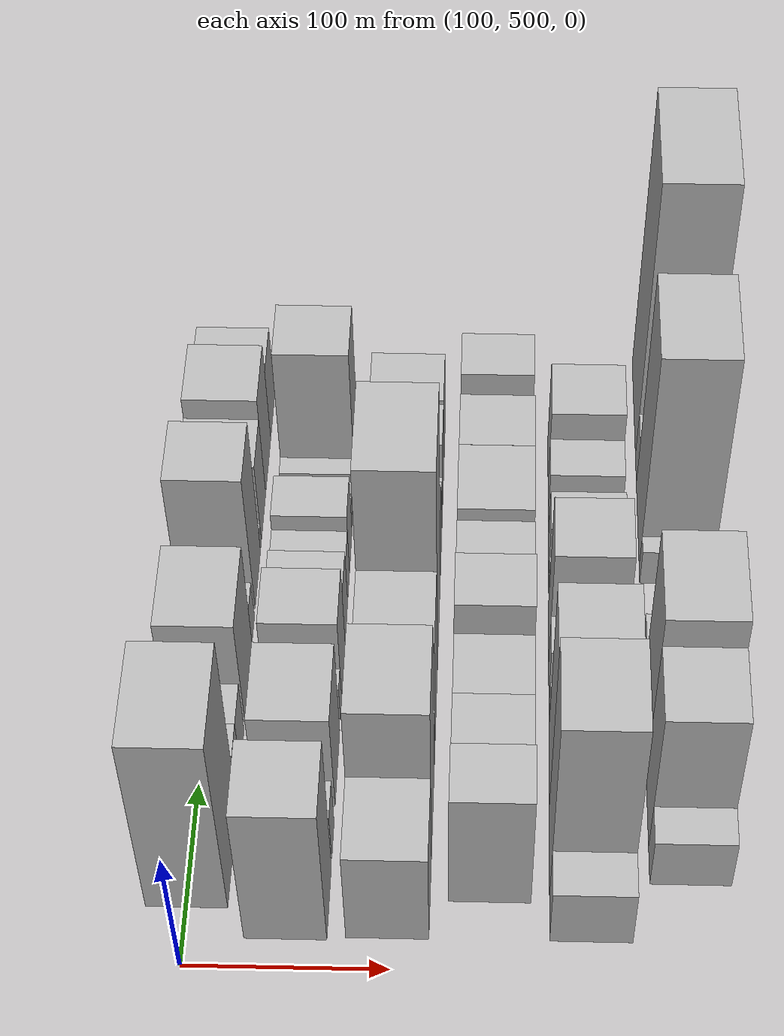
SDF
<sdf version="1.6">
 <world name="default">
  <model name="building_46">
   <static>1</static>
   <pose>100.0000 559.2429 0 0.000000 0.000000 0.000000</pose>
   <link name="link">
    <pose>0 0 72.00 0 0 0</pose>
    <collision name="collision"><geometry><box><size>40.0000 56.6516 144.0000</size></box></geometry></collision>
    <visual name="visual">
     <cast_shadows>0</cast_shadows>
     <geometry><box><size>40.0000 56.6516 144.0000</size></box></geometry>
     <material>
      <script>
       <uri>model://HANNAS_wall/materials/scripts</uri>
       <uri>model://HANNAS_wall/materials/textures</uri>
       <name>vrc/HANNAS_wall</name>
      </script>
     </material>
    </visual>
   </link>
  </model>
  <model name="building_47">
   <static>1</static>
   <pose>100.0000 598.6686 0 0.000000 0.000000 0.000000</pose>
   <link name="link">
    <pose>0 0 21.00 0 0 0</pose>
    <collision name="collision"><geometry><box><size>40.0000 22.1999 42.0000</size></box></geometry></collision>
    <visual name="visual">
     <cast_shadows>0</cast_shadows>
     <geometry><box><size>40.0000 22.1999 42.0000</size></box></geometry>
     <material>
      <script>
       <uri>model://HANNAS_wall/materials/scripts</uri>
       <uri>model://HANNAS_wall/materials/textures</uri>
       <name>vrc/HANNAS_wall</name>
      </script>
     </material>
    </visual>
   </link>
  </model>
  <model name="building_48">
   <static>1</static>
   <pose>100.0000 621.4675 0 0.000000 0.000000 0.000000</pose>
   <link name="link">
    <pose>0 0 21.00 0 0 0</pose>
    <collision name="collision"><geometry><box><size>40.0000 23.3979 42.0000</size></box></geometry></collision>
    <visual name="visual">
     <cast_shadows>0</cast_shadows>
     <geometry><box><size>40.0000 23.3979 42.0000</size></box></geometry>
     <material>
      <script>
       <uri>model://HANNAS_wall/materials/scripts</uri>
       <uri>model://HANNAS_wall/materials/textures</uri>
       <name>vrc/HANNAS_wall</name>
      </script>
     </material>
    </visual>
   </link>
  </model>
  <model name="building_49">
   <static>1</static>
   <pose>100.0000 662.6678 0 0.000000 0.000000 0.000000</pose>
   <link name="link">
    <pose>0 0 42.00 0 0 0</pose>
    <collision name="collision"><geometry><box><size>40.0000 49.0027 84.0000</size></box></geometry></collision>
    <visual name="visual">
     <cast_shadows>0</cast_shadows>
     <geometry><box><size>40.0000 49.0027 84.0000</size></box></geometry>
     <material>
      <script>
       <uri>model://HANNAS_wall/materials/scripts</uri>
       <uri>model://HANNAS_wall/materials/textures</uri>
       <name>vrc/HANNAS_wall</name>
      </script>
     </material>
    </visual>
   </link>
  </model>
  <model name="building_50">
   <static>1</static>
   <pose>100.0000 695.8638 0 0.000000 0.000000 0.000000</pose>
   <link name="link">
    <pose>0 0 15.00 0 0 0</pose>
    <collision name="collision"><geometry><box><size>40.0000 17.3894 30.0000</size></box></geometry></collision>
    <visual name="visual">
     <cast_shadows>0</cast_shadows>
     <geometry><box><size>40.0000 17.3894 30.0000</size></box></geometry>
     <material>
      <script>
       <uri>model://HANNAS_wall/materials/scripts</uri>
       <uri>model://HANNAS_wall/materials/textures</uri>
       <name>vrc/HANNAS_wall</name>
      </script>
     </material>
    </visual>
   </link>
  </model>
  <model name="building_51">
   <static>1</static>
   <pose>100.0000 728.7496 0 0.000000 0.000000 0.000000</pose>
   <link name="link">
    <pose>0 0 54.00 0 0 0</pose>
    <collision name="collision"><geometry><box><size>40.0000 38.3821 108.0000</size></box></geometry></collision>
    <visual name="visual">
     <cast_shadows>0</cast_shadows>
     <geometry><box><size>40.0000 38.3821 108.0000</size></box></geometry>
     <material>
      <script>
       <uri>model://HANNAS_wall/materials/scripts</uri>
       <uri>model://HANNAS_wall/materials/textures</uri>
       <name>vrc/HANNAS_wall</name>
      </script>
     </material>
    </visual>
   </link>
  </model>
  <model name="building_52">
   <static>1</static>
   <pose>100.0000 751.4779 0 0.000000 0.000000 0.000000</pose>
   <link name="link">
    <pose>0 0 7.50 0 0 0</pose>
    <collision name="collision"><geometry><box><size>40.0000 7.0746 15.0000</size></box></geometry></collision>
    <visual name="visual">
     <cast_shadows>0</cast_shadows>
     <geometry><box><size>40.0000 7.0746 15.0000</size></box></geometry>
     <material>
      <script>
       <uri>model://HANNAS_wall/materials/scripts</uri>
       <uri>model://HANNAS_wall/materials/textures</uri>
       <name>vrc/HANNAS_wall</name>
      </script>
     </material>
    </visual>
   </link>
  </model>
  <model name="building_53">
   <static>1</static>
   <pose>100.0000 771.5114 0 0.000000 0.000000 0.000000</pose>
   <link name="link">
    <pose>0 0 31.50 0 0 0</pose>
    <collision name="collision"><geometry><box><size>40.0000 32.9924 63.0000</size></box></geometry></collision>
    <visual name="visual">
     <cast_shadows>0</cast_shadows>
     <geometry><box><size>40.0000 32.9924 63.0000</size></box></geometry>
     <material>
      <script>
       <uri>model://HANNAS_wall/materials/scripts</uri>
       <uri>model://HANNAS_wall/materials/textures</uri>
       <name>vrc/HANNAS_wall</name>
      </script>
     </material>
    </visual>
   </link>
  </model>
  <model name="building_54">
   <static>1</static>
   <pose>100.0000 807.7288 0 0.000000 0.000000 0.000000</pose>
   <link name="link">
    <pose>0 0 39.00 0 0 0</pose>
    <collision name="collision"><geometry><box><size>40.0000 39.4424 78.0000</size></box></geometry></collision>
    <visual name="visual">
     <cast_shadows>0</cast_shadows>
     <geometry><box><size>40.0000 39.4424 78.0000</size></box></geometry>
     <material>
      <script>
       <uri>model://HANNAS_wall/materials/scripts</uri>
       <uri>model://HANNAS_wall/materials/textures</uri>
       <name>vrc/HANNAS_wall</name>
      </script>
     </material>
    </visual>
   </link>
  </model>
  <model name="building_55">
   <static>1</static>
   <pose>100.0000 843.3820 0 0.000000 0.000000 0.000000</pose>
   <link name="link">
    <pose>0 0 28.50 0 0 0</pose>
    <collision name="collision"><geometry><box><size>40.0000 31.8641 57.0000</size></box></geometry></collision>
    <visual name="visual">
     <cast_shadows>0</cast_shadows>
     <geometry><box><size>40.0000 31.8641 57.0000</size></box></geometry>
     <material>
      <script>
       <uri>model://HANNAS_wall/materials/scripts</uri>
       <uri>model://HANNAS_wall/materials/textures</uri>
       <name>vrc/HANNAS_wall</name>
      </script>
     </material>
    </visual>
   </link>
  </model>
  <model name="building_101">
   <static>1</static>
   <pose>149.0000 534.9951 0 0.000000 0.000000 0.000000</pose>
   <link name="link">
    <pose>0 0 57.00 0 0 0</pose>
    <collision name="collision"><geometry><box><size>40.0000 40.2542 114.0000</size></box></geometry></collision>
    <visual name="visual">
     <cast_shadows>0</cast_shadows>
     <geometry><box><size>40.0000 40.2542 114.0000</size></box></geometry>
     <material>
      <script>
       <uri>model://HANNAS_wall/materials/scripts</uri>
       <uri>model://HANNAS_wall/materials/textures</uri>
       <name>vrc/HANNAS_wall</name>
      </script>
     </material>
    </visual>
   </link>
  </model>
  <model name="building_102">
   <static>1</static>
   <pose>149.0000 569.5381 0 0.000000 0.000000 0.000000</pose>
   <link name="link">
    <pose>0 0 19.50 0 0 0</pose>
    <collision name="collision"><geometry><box><size>40.0000 20.8317 39.0000</size></box></geometry></collision>
    <visual name="visual">
     <cast_shadows>0</cast_shadows>
     <geometry><box><size>40.0000 20.8317 39.0000</size></box></geometry>
     <material>
      <script>
       <uri>model://HANNAS_wall/materials/scripts</uri>
       <uri>model://HANNAS_wall/materials/textures</uri>
       <name>vrc/HANNAS_wall</name>
      </script>
     </material>
    </visual>
   </link>
  </model>
  <model name="building_103">
   <static>1</static>
   <pose>149.0000 611.3906 0 0.000000 0.000000 0.000000</pose>
   <link name="link">
    <pose>0 0 39.00 0 0 0</pose>
    <collision name="collision"><geometry><box><size>40.0000 44.8732 78.0000</size></box></geometry></collision>
    <visual name="visual">
     <cast_shadows>0</cast_shadows>
     <geometry><box><size>40.0000 44.8732 78.0000</size></box></geometry>
     <material>
      <script>
       <uri>model://HANNAS_wall/materials/scripts</uri>
       <uri>model://HANNAS_wall/materials/textures</uri>
       <name>vrc/HANNAS_wall</name>
      </script>
     </material>
    </visual>
   </link>
  </model>
  <model name="building_104">
   <static>1</static>
   <pose>149.0000 647.1816 0 0.000000 0.000000 0.000000</pose>
   <link name="link">
    <pose>0 0 13.50 0 0 0</pose>
    <collision name="collision"><geometry><box><size>40.0000 12.7090 27.0000</size></box></geometry></collision>
    <visual name="visual">
     <cast_shadows>0</cast_shadows>
     <geometry><box><size>40.0000 12.7090 27.0000</size></box></geometry>
     <material>
      <script>
       <uri>model://HANNAS_wall/materials/scripts</uri>
       <uri>model://HANNAS_wall/materials/textures</uri>
       <name>vrc/HANNAS_wall</name>
      </script>
     </material>
    </visual>
   </link>
  </model>
  <model name="building_105">
   <static>1</static>
   <pose>149.0000 670.7707 0 0.000000 0.000000 0.000000</pose>
   <link name="link">
    <pose>0 0 33.00 0 0 0</pose>
    <collision name="collision"><geometry><box><size>40.0000 34.4691 66.0000</size></box></geometry></collision>
    <visual name="visual">
     <cast_shadows>0</cast_shadows>
     <geometry><box><size>40.0000 34.4691 66.0000</size></box></geometry>
     <material>
      <script>
       <uri>model://HANNAS_wall/materials/scripts</uri>
       <uri>model://HANNAS_wall/materials/textures</uri>
       <name>vrc/HANNAS_wall</name>
      </script>
     </material>
    </visual>
   </link>
  </model>
  <model name="building_106">
   <static>1</static>
   <pose>149.0000 701.3755 0 0.000000 0.000000 0.000000</pose>
   <link name="link">
    <pose>0 0 22.50 0 0 0</pose>
    <collision name="collision"><geometry><box><size>40.0000 26.7407 45.0000</size></box></geometry></collision>
    <visual name="visual">
     <cast_shadows>0</cast_shadows>
     <geometry><box><size>40.0000 26.7407 45.0000</size></box></geometry>
     <material>
      <script>
       <uri>model://HANNAS_wall/materials/scripts</uri>
       <uri>model://HANNAS_wall/materials/textures</uri>
       <name>vrc/HANNAS_wall</name>
      </script>
     </material>
    </visual>
   </link>
  </model>
  <model name="building_107">
   <static>1</static>
   <pose>149.0000 724.8934 0 0.000000 0.000000 0.000000</pose>
   <link name="link">
    <pose>0 0 18.00 0 0 0</pose>
    <collision name="collision"><geometry><box><size>40.0000 20.2952 36.0000</size></box></geometry></collision>
    <visual name="visual">
     <cast_shadows>0</cast_shadows>
     <geometry><box><size>40.0000 20.2952 36.0000</size></box></geometry>
     <material>
      <script>
       <uri>model://HANNAS_wall/materials/scripts</uri>
       <uri>model://HANNAS_wall/materials/textures</uri>
       <name>vrc/HANNAS_wall</name>
      </script>
     </material>
    </visual>
   </link>
  </model>
  <model name="building_108">
   <static>1</static>
   <pose>149.0000 748.5967 0 0.000000 0.000000 0.000000</pose>
   <link name="link">
    <pose>0 0 24.00 0 0 0</pose>
    <collision name="collision"><geometry><box><size>40.0000 27.1114 48.0000</size></box></geometry></collision>
    <visual name="visual">
     <cast_shadows>0</cast_shadows>
     <geometry><box><size>40.0000 27.1114 48.0000</size></box></geometry>
     <material>
      <script>
       <uri>model://HANNAS_wall/materials/scripts</uri>
       <uri>model://HANNAS_wall/materials/textures</uri>
       <name>vrc/HANNAS_wall</name>
      </script>
     </material>
    </visual>
   </link>
  </model>
  <model name="building_109">
   <static>1</static>
   <pose>149.0000 766.4073 0 0.000000 0.000000 0.000000</pose>
   <link name="link">
    <pose>0 0 10.50 0 0 0</pose>
    <collision name="collision"><geometry><box><size>40.0000 8.5098 21.0000</size></box></geometry></collision>
    <visual name="visual">
     <cast_shadows>0</cast_shadows>
     <geometry><box><size>40.0000 8.5098 21.0000</size></box></geometry>
     <material>
      <script>
       <uri>model://HANNAS_wall/materials/scripts</uri>
       <uri>model://HANNAS_wall/materials/textures</uri>
       <name>vrc/HANNAS_wall</name>
      </script>
     </material>
    </visual>
   </link>
  </model>
  <model name="building_110">
   <static>1</static>
   <pose>149.0000 778.8269 0 0.000000 0.000000 0.000000</pose>
   <link name="link">
    <pose>0 0 9.00 0 0 0</pose>
    <collision name="collision"><geometry><box><size>40.0000 8.3294 18.0000</size></box></geometry></collision>
    <visual name="visual">
     <cast_shadows>0</cast_shadows>
     <geometry><box><size>40.0000 8.3294 18.0000</size></box></geometry>
     <material>
      <script>
       <uri>model://HANNAS_wall/materials/scripts</uri>
       <uri>model://HANNAS_wall/materials/textures</uri>
       <name>vrc/HANNAS_wall</name>
      </script>
     </material>
    </visual>
   </link>
  </model>
  <model name="building_111">
   <static>1</static>
   <pose>149.0000 788.6554 0 0.000000 0.000000 0.000000</pose>
   <link name="link">
    <pose>0 0 12.00 0 0 0</pose>
    <collision name="collision"><geometry><box><size>40.0000 11.3275 24.0000</size></box></geometry></collision>
    <visual name="visual">
     <cast_shadows>0</cast_shadows>
     <geometry><box><size>40.0000 11.3275 24.0000</size></box></geometry>
     <material>
      <script>
       <uri>model://HANNAS_wall/materials/scripts</uri>
       <uri>model://HANNAS_wall/materials/textures</uri>
       <name>vrc/HANNAS_wall</name>
      </script>
     </material>
    </visual>
   </link>
  </model>
  <model name="building_112">
   <static>1</static>
   <pose>149.0000 811.8567 0 0.000000 0.000000 0.000000</pose>
   <link name="link">
    <pose>0 0 54.00 0 0 0</pose>
    <collision name="collision"><geometry><box><size>40.0000 35.0752 108.0000</size></box></geometry></collision>
    <visual name="visual">
     <cast_shadows>0</cast_shadows>
     <geometry><box><size>40.0000 35.0752 108.0000</size></box></geometry>
     <material>
      <script>
       <uri>model://HANNAS_wall/materials/scripts</uri>
       <uri>model://HANNAS_wall/materials/textures</uri>
       <name>vrc/HANNAS_wall</name>
      </script>
     </material>
    </visual>
   </link>
  </model>
  <model name="building_113">
   <static>1</static>
   <pose>149.0000 833.7537 0 0.000000 0.000000 0.000000</pose>
   <link name="link">
    <pose>0 0 10.50 0 0 0</pose>
    <collision name="collision"><geometry><box><size>40.0000 8.7186 21.0000</size></box></geometry></collision>
    <visual name="visual">
     <cast_shadows>0</cast_shadows>
     <geometry><box><size>40.0000 8.7186 21.0000</size></box></geometry>
     <material>
      <script>
       <uri>model://HANNAS_wall/materials/scripts</uri>
       <uri>model://HANNAS_wall/materials/textures</uri>
       <name>vrc/HANNAS_wall</name>
      </script>
     </material>
    </visual>
   </link>
  </model>
  <model name="building_152">
   <static>1</static>
   <pose>198.0000 538.4800 0 0.000000 0.000000 0.000000</pose>
   <link name="link">
    <pose>0 0 37.50 0 0 0</pose>
    <collision name="collision"><geometry><box><size>40.0000 44.2013 75.0000</size></box></geometry></collision>
    <visual name="visual">
     <cast_shadows>0</cast_shadows>
     <geometry><box><size>40.0000 44.2013 75.0000</size></box></geometry>
     <material>
      <script>
       <uri>model://HANNAS_wall/materials/scripts</uri>
       <uri>model://HANNAS_wall/materials/textures</uri>
       <name>vrc/HANNAS_wall</name>
      </script>
     </material>
    </visual>
   </link>
  </model>
  <model name="building_153">
   <static>1</static>
   <pose>198.0000 585.3337 0 0.000000 0.000000 0.000000</pose>
   <link name="link">
    <pose>0 0 64.50 0 0 0</pose>
    <collision name="collision"><geometry><box><size>40.0000 49.5060 129.0000</size></box></geometry></collision>
    <visual name="visual">
     <cast_shadows>0</cast_shadows>
     <geometry><box><size>40.0000 49.5060 129.0000</size></box></geometry>
     <material>
      <script>
       <uri>model://HANNAS_wall/materials/scripts</uri>
       <uri>model://HANNAS_wall/materials/textures</uri>
       <name>vrc/HANNAS_wall</name>
      </script>
     </material>
    </visual>
   </link>
  </model>
  <model name="building_154">
   <static>1</static>
   <pose>198.0000 619.0018 0 0.000000 0.000000 0.000000</pose>
   <link name="link">
    <pose>0 0 15.00 0 0 0</pose>
    <collision name="collision"><geometry><box><size>40.0000 17.8302 30.0000</size></box></geometry></collision>
    <visual name="visual">
     <cast_shadows>0</cast_shadows>
     <geometry><box><size>40.0000 17.8302 30.0000</size></box></geometry>
     <material>
      <script>
       <uri>model://HANNAS_wall/materials/scripts</uri>
       <uri>model://HANNAS_wall/materials/textures</uri>
       <name>vrc/HANNAS_wall</name>
      </script>
     </material>
    </visual>
   </link>
  </model>
  <model name="building_155">
   <static>1</static>
   <pose>198.0000 649.9131 0 0.000000 0.000000 0.000000</pose>
   <link name="link">
    <pose>0 0 43.50 0 0 0</pose>
    <collision name="collision"><geometry><box><size>40.0000 43.9924 87.0000</size></box></geometry></collision>
    <visual name="visual">
     <cast_shadows>0</cast_shadows>
     <geometry><box><size>40.0000 43.9924 87.0000</size></box></geometry>
     <material>
      <script>
       <uri>model://HANNAS_wall/materials/scripts</uri>
       <uri>model://HANNAS_wall/materials/textures</uri>
       <name>vrc/HANNAS_wall</name>
      </script>
     </material>
    </visual>
   </link>
  </model>
  <model name="building_156">
   <static>1</static>
   <pose>198.0000 699.5002 0 0.000000 0.000000 0.000000</pose>
   <link name="link">
    <pose>0 0 82.50 0 0 0</pose>
    <collision name="collision"><geometry><box><size>40.0000 55.1818 165.0000</size></box></geometry></collision>
    <visual name="visual">
     <cast_shadows>0</cast_shadows>
     <geometry><box><size>40.0000 55.1818 165.0000</size></box></geometry>
     <material>
      <script>
       <uri>model://HANNAS_wall/materials/scripts</uri>
       <uri>model://HANNAS_wall/materials/textures</uri>
       <name>vrc/HANNAS_wall</name>
      </script>
     </material>
    </visual>
   </link>
  </model>
  <model name="building_157">
   <static>1</static>
   <pose>198.0000 742.1951 0 0.000000 0.000000 0.000000</pose>
   <link name="link">
    <pose>0 0 25.50 0 0 0</pose>
    <collision name="collision"><geometry><box><size>40.0000 30.2081 51.0000</size></box></geometry></collision>
    <visual name="visual">
     <cast_shadows>0</cast_shadows>
     <geometry><box><size>40.0000 30.2081 51.0000</size></box></geometry>
     <material>
      <script>
       <uri>model://HANNAS_wall/materials/scripts</uri>
       <uri>model://HANNAS_wall/materials/textures</uri>
       <name>vrc/HANNAS_wall</name>
      </script>
     </material>
    </visual>
   </link>
  </model>
  <model name="building_158">
   <static>1</static>
   <pose>198.0000 768.9513 0 0.000000 0.000000 0.000000</pose>
   <link name="link">
    <pose>0 0 15.00 0 0 0</pose>
    <collision name="collision"><geometry><box><size>40.0000 17.3043 30.0000</size></box></geometry></collision>
    <visual name="visual">
     <cast_shadows>0</cast_shadows>
     <geometry><box><size>40.0000 17.3043 30.0000</size></box></geometry>
     <material>
      <script>
       <uri>model://HANNAS_wall/materials/scripts</uri>
       <uri>model://HANNAS_wall/materials/textures</uri>
       <name>vrc/HANNAS_wall</name>
      </script>
     </material>
    </visual>
   </link>
  </model>
  <model name="building_159">
   <static>1</static>
   <pose>198.0000 791.8605 0 0.000000 0.000000 0.000000</pose>
   <link name="link">
    <pose>0 0 28.50 0 0 0</pose>
    <collision name="collision"><geometry><box><size>40.0000 28.5141 57.0000</size></box></geometry></collision>
    <visual name="visual">
     <cast_shadows>0</cast_shadows>
     <geometry><box><size>40.0000 28.5141 57.0000</size></box></geometry>
     <material>
      <script>
       <uri>model://HANNAS_wall/materials/scripts</uri>
       <uri>model://HANNAS_wall/materials/textures</uri>
       <name>vrc/HANNAS_wall</name>
      </script>
     </material>
    </visual>
   </link>
  </model>
  <model name="building_160">
   <static>1</static>
   <pose>198.0000 822.9380 0 0.000000 0.000000 0.000000</pose>
   <link name="link">
    <pose>0 0 30.00 0 0 0</pose>
    <collision name="collision"><geometry><box><size>40.0000 33.6409 60.0000</size></box></geometry></collision>
    <visual name="visual">
     <cast_shadows>0</cast_shadows>
     <geometry><box><size>40.0000 33.6409 60.0000</size></box></geometry>
     <material>
      <script>
       <uri>model://HANNAS_wall/materials/scripts</uri>
       <uri>model://HANNAS_wall/materials/textures</uri>
       <name>vrc/HANNAS_wall</name>
      </script>
     </material>
    </visual>
   </link>
  </model>
  <model name="building_195">
   <static>1</static>
   <pose>247.0000 553.0447 0 0.000000 0.000000 0.000000</pose>
   <link name="link">
    <pose>0 0 46.50 0 0 0</pose>
    <collision name="collision"><geometry><box><size>40.0000 31.8889 93.0000</size></box></geometry></collision>
    <visual name="visual">
     <cast_shadows>0</cast_shadows>
     <geometry><box><size>40.0000 31.8889 93.0000</size></box></geometry>
     <material>
      <script>
       <uri>model://HANNAS_wall/materials/scripts</uri>
       <uri>model://HANNAS_wall/materials/textures</uri>
       <name>vrc/HANNAS_wall</name>
      </script>
     </material>
    </visual>
   </link>
  </model>
  <model name="building_196">
   <static>1</static>
   <pose>247.0000 588.8112 0 0.000000 0.000000 0.000000</pose>
   <link name="link">
    <pose>0 0 37.50 0 0 0</pose>
    <collision name="collision"><geometry><box><size>40.0000 39.6441 75.0000</size></box></geometry></collision>
    <visual name="visual">
     <cast_shadows>0</cast_shadows>
     <geometry><box><size>40.0000 39.6441 75.0000</size></box></geometry>
     <material>
      <script>
       <uri>model://HANNAS_wall/materials/scripts</uri>
       <uri>model://HANNAS_wall/materials/textures</uri>
       <name>vrc/HANNAS_wall</name>
      </script>
     </material>
    </visual>
   </link>
  </model>
  <model name="building_197">
   <static>1</static>
   <pose>247.0000 628.1541 0 0.000000 0.000000 0.000000</pose>
   <link name="link">
    <pose>0 0 34.50 0 0 0</pose>
    <collision name="collision"><geometry><box><size>40.0000 39.0417 69.0000</size></box></geometry></collision>
    <visual name="visual">
     <cast_shadows>0</cast_shadows>
     <geometry><box><size>40.0000 39.0417 69.0000</size></box></geometry>
     <material>
      <script>
       <uri>model://HANNAS_wall/materials/scripts</uri>
       <uri>model://HANNAS_wall/materials/textures</uri>
       <name>vrc/HANNAS_wall</name>
      </script>
     </material>
    </visual>
   </link>
  </model>
  <model name="building_198">
   <static>1</static>
   <pose>247.0000 663.4984 0 0.000000 0.000000 0.000000</pose>
   <link name="link">
    <pose>0 0 46.50 0 0 0</pose>
    <collision name="collision"><geometry><box><size>40.0000 31.6468 93.0000</size></box></geometry></collision>
    <visual name="visual">
     <cast_shadows>0</cast_shadows>
     <geometry><box><size>40.0000 31.6468 93.0000</size></box></geometry>
     <material>
      <script>
       <uri>model://HANNAS_wall/materials/scripts</uri>
       <uri>model://HANNAS_wall/materials/textures</uri>
       <name>vrc/HANNAS_wall</name>
      </script>
     </material>
    </visual>
   </link>
  </model>
  <model name="building_199">
   <static>1</static>
   <pose>247.0000 698.7962 0 0.000000 0.000000 0.000000</pose>
   <link name="link">
    <pose>0 0 34.50 0 0 0</pose>
    <collision name="collision"><geometry><box><size>40.0000 38.9489 69.0000</size></box></geometry></collision>
    <visual name="visual">
     <cast_shadows>0</cast_shadows>
     <geometry><box><size>40.0000 38.9489 69.0000</size></box></geometry>
     <material>
      <script>
       <uri>model://HANNAS_wall/materials/scripts</uri>
       <uri>model://HANNAS_wall/materials/textures</uri>
       <name>vrc/HANNAS_wall</name>
      </script>
     </material>
    </visual>
   </link>
  </model>
  <model name="building_200">
   <static>1</static>
   <pose>247.0000 744.6103 0 0.000000 0.000000 0.000000</pose>
   <link name="link">
    <pose>0 0 36.00 0 0 0</pose>
    <collision name="collision"><geometry><box><size>40.0000 42.6793 72.0000</size></box></geometry></collision>
    <visual name="visual">
     <cast_shadows>0</cast_shadows>
     <geometry><box><size>40.0000 42.6793 72.0000</size></box></geometry>
     <material>
      <script>
       <uri>model://HANNAS_wall/materials/scripts</uri>
       <uri>model://HANNAS_wall/materials/textures</uri>
       <name>vrc/HANNAS_wall</name>
      </script>
     </material>
    </visual>
   </link>
  </model>
  <model name="building_201">
   <static>1</static>
   <pose>247.0000 788.4122 0 0.000000 0.000000 0.000000</pose>
   <link name="link">
    <pose>0 0 33.00 0 0 0</pose>
    <collision name="collision"><geometry><box><size>40.0000 34.9244 66.0000</size></box></geometry></collision>
    <visual name="visual">
     <cast_shadows>0</cast_shadows>
     <geometry><box><size>40.0000 34.9244 66.0000</size></box></geometry>
     <material>
      <script>
       <uri>model://HANNAS_wall/materials/scripts</uri>
       <uri>model://HANNAS_wall/materials/textures</uri>
       <name>vrc/HANNAS_wall</name>
      </script>
     </material>
    </visual>
   </link>
  </model>
  <model name="building_202">
   <static>1</static>
   <pose>247.0000 816.9591 0 0.000000 0.000000 0.000000</pose>
   <link name="link">
    <pose>0 0 19.50 0 0 0</pose>
    <collision name="collision"><geometry><box><size>40.0000 22.1694 39.0000</size></box></geometry></collision>
    <visual name="visual">
     <cast_shadows>0</cast_shadows>
     <geometry><box><size>40.0000 22.1694 39.0000</size></box></geometry>
     <material>
      <script>
       <uri>model://HANNAS_wall/materials/scripts</uri>
       <uri>model://HANNAS_wall/materials/textures</uri>
       <name>vrc/HANNAS_wall</name>
      </script>
     </material>
    </visual>
   </link>
  </model>
  <model name="building_203">
   <static>1</static>
   <pose>247.0000 843.0569 0 0.000000 0.000000 0.000000</pose>
   <link name="link">
    <pose>0 0 28.50 0 0 0</pose>
    <collision name="collision"><geometry><box><size>40.0000 30.0263 57.0000</size></box></geometry></collision>
    <visual name="visual">
     <cast_shadows>0</cast_shadows>
     <geometry><box><size>40.0000 30.0263 57.0000</size></box></geometry>
     <material>
      <script>
       <uri>model://HANNAS_wall/materials/scripts</uri>
       <uri>model://HANNAS_wall/materials/textures</uri>
       <name>vrc/HANNAS_wall</name>
      </script>
     </material>
    </visual>
   </link>
  </model>
  <model name="building_243">
   <static>1</static>
   <pose>296.0000 528.6323 0 0.000000 0.000000 0.000000</pose>
   <link name="link">
    <pose>0 0 22.50 0 0 0</pose>
    <collision name="collision"><geometry><box><size>40.0000 23.6353 45.0000</size></box></geometry></collision>
    <visual name="visual">
     <cast_shadows>0</cast_shadows>
     <geometry><box><size>40.0000 23.6353 45.0000</size></box></geometry>
     <material>
      <script>
       <uri>model://HANNAS_wall/materials/scripts</uri>
       <uri>model://HANNAS_wall/materials/textures</uri>
       <name>vrc/HANNAS_wall</name>
      </script>
     </material>
    </visual>
   </link>
  </model>
  <model name="building_244">
   <static>1</static>
   <pose>296.0000 565.1753 0 0.000000 0.000000 0.000000</pose>
   <link name="link">
    <pose>0 0 75.00 0 0 0</pose>
    <collision name="collision"><geometry><box><size>40.0000 49.4507 150.0000</size></box></geometry></collision>
    <visual name="visual">
     <cast_shadows>0</cast_shadows>
     <geometry><box><size>40.0000 49.4507 150.0000</size></box></geometry>
     <material>
      <script>
       <uri>model://HANNAS_wall/materials/scripts</uri>
       <uri>model://HANNAS_wall/materials/textures</uri>
       <name>vrc/HANNAS_wall</name>
      </script>
     </material>
    </visual>
   </link>
  </model>
  <model name="building_245">
   <static>1</static>
   <pose>296.0000 612.8661 0 0.000000 0.000000 0.000000</pose>
   <link name="link">
    <pose>0 0 64.50 0 0 0</pose>
    <collision name="collision"><geometry><box><size>40.0000 45.9309 129.0000</size></box></geometry></collision>
    <visual name="visual">
     <cast_shadows>0</cast_shadows>
     <geometry><box><size>40.0000 45.9309 129.0000</size></box></geometry>
     <material>
      <script>
       <uri>model://HANNAS_wall/materials/scripts</uri>
       <uri>model://HANNAS_wall/materials/textures</uri>
       <name>vrc/HANNAS_wall</name>
      </script>
     </material>
    </visual>
   </link>
  </model>
  <model name="building_246">
   <static>1</static>
   <pose>296.0000 644.8237 0 0.000000 0.000000 0.000000</pose>
   <link name="link">
    <pose>0 0 12.00 0 0 0</pose>
    <collision name="collision"><geometry><box><size>40.0000 9.9842 24.0000</size></box></geometry></collision>
    <visual name="visual">
     <cast_shadows>0</cast_shadows>
     <geometry><box><size>40.0000 9.9842 24.0000</size></box></geometry>
     <material>
      <script>
       <uri>model://HANNAS_wall/materials/scripts</uri>
       <uri>model://HANNAS_wall/materials/textures</uri>
       <name>vrc/HANNAS_wall</name>
      </script>
     </material>
    </visual>
   </link>
  </model>
  <model name="building_247">
   <static>1</static>
   <pose>296.0000 667.0130 0 0.000000 0.000000 0.000000</pose>
   <link name="link">
    <pose>0 0 21.00 0 0 0</pose>
    <collision name="collision"><geometry><box><size>40.0000 22.3943 42.0000</size></box></geometry></collision>
    <visual name="visual">
     <cast_shadows>0</cast_shadows>
     <geometry><box><size>40.0000 22.3943 42.0000</size></box></geometry>
     <material>
      <script>
       <uri>model://HANNAS_wall/materials/scripts</uri>
       <uri>model://HANNAS_wall/materials/textures</uri>
       <name>vrc/HANNAS_wall</name>
      </script>
     </material>
    </visual>
   </link>
  </model>
  <model name="building_248">
   <static>1</static>
   <pose>296.0000 696.7592 0 0.000000 0.000000 0.000000</pose>
   <link name="link">
    <pose>0 0 46.50 0 0 0</pose>
    <collision name="collision"><geometry><box><size>40.0000 37.0981 93.0000</size></box></geometry></collision>
    <visual name="visual">
     <cast_shadows>0</cast_shadows>
     <geometry><box><size>40.0000 37.0981 93.0000</size></box></geometry>
     <material>
      <script>
       <uri>model://HANNAS_wall/materials/scripts</uri>
       <uri>model://HANNAS_wall/materials/textures</uri>
       <name>vrc/HANNAS_wall</name>
      </script>
     </material>
    </visual>
   </link>
  </model>
  <model name="building_249">
   <static>1</static>
   <pose>296.0000 727.6849 0 0.000000 0.000000 0.000000</pose>
   <link name="link">
    <pose>0 0 10.50 0 0 0</pose>
    <collision name="collision"><geometry><box><size>40.0000 8.7533 21.0000</size></box></geometry></collision>
    <visual name="visual">
     <cast_shadows>0</cast_shadows>
     <geometry><box><size>40.0000 8.7533 21.0000</size></box></geometry>
     <material>
      <script>
       <uri>model://HANNAS_wall/materials/scripts</uri>
       <uri>model://HANNAS_wall/materials/textures</uri>
       <name>vrc/HANNAS_wall</name>
      </script>
     </material>
    </visual>
   </link>
  </model>
  <model name="building_250">
   <static>1</static>
   <pose>296.0000 744.6837 0 0.000000 0.000000 0.000000</pose>
   <link name="link">
    <pose>0 0 22.50 0 0 0</pose>
    <collision name="collision"><geometry><box><size>40.0000 25.2443 45.0000</size></box></geometry></collision>
    <visual name="visual">
     <cast_shadows>0</cast_shadows>
     <geometry><box><size>40.0000 25.2443 45.0000</size></box></geometry>
     <material>
      <script>
       <uri>model://HANNAS_wall/materials/scripts</uri>
       <uri>model://HANNAS_wall/materials/textures</uri>
       <name>vrc/HANNAS_wall</name>
      </script>
     </material>
    </visual>
   </link>
  </model>
  <model name="building_251">
   <static>1</static>
   <pose>296.0000 767.4627 0 0.000000 0.000000 0.000000</pose>
   <link name="link">
    <pose>0 0 7.50 0 0 0</pose>
    <collision name="collision"><geometry><box><size>40.0000 6.3138 15.0000</size></box></geometry></collision>
    <visual name="visual">
     <cast_shadows>0</cast_shadows>
     <geometry><box><size>40.0000 6.3138 15.0000</size></box></geometry>
     <material>
      <script>
       <uri>model://HANNAS_wall/materials/scripts</uri>
       <uri>model://HANNAS_wall/materials/textures</uri>
       <name>vrc/HANNAS_wall</name>
      </script>
     </material>
    </visual>
   </link>
  </model>
  <model name="building_252">
   <static>1</static>
   <pose>296.0000 783.1545 0 0.000000 0.000000 0.000000</pose>
   <link name="link">
    <pose>0 0 21.00 0 0 0</pose>
    <collision name="collision"><geometry><box><size>40.0000 25.0698 42.0000</size></box></geometry></collision>
    <visual name="visual">
     <cast_shadows>0</cast_shadows>
     <geometry><box><size>40.0000 25.0698 42.0000</size></box></geometry>
     <material>
      <script>
       <uri>model://HANNAS_wall/materials/scripts</uri>
       <uri>model://HANNAS_wall/materials/textures</uri>
       <name>vrc/HANNAS_wall</name>
      </script>
     </material>
    </visual>
   </link>
  </model>
  <model name="building_253">
   <static>1</static>
   <pose>296.0000 813.5113 0 0.000000 0.000000 0.000000</pose>
   <link name="link">
    <pose>0 0 31.50 0 0 0</pose>
    <collision name="collision"><geometry><box><size>40.0000 35.6438 63.0000</size></box></geometry></collision>
    <visual name="visual">
     <cast_shadows>0</cast_shadows>
     <geometry><box><size>40.0000 35.6438 63.0000</size></box></geometry>
     <material>
      <script>
       <uri>model://HANNAS_wall/materials/scripts</uri>
       <uri>model://HANNAS_wall/materials/textures</uri>
       <name>vrc/HANNAS_wall</name>
      </script>
     </material>
    </visual>
   </link>
  </model>
  <model name="building_292">
   <static>1</static>
   <pose>345.0000 559.1212 0 0.000000 0.000000 0.000000</pose>
   <link name="link">
    <pose>0 0 19.50 0 0 0</pose>
    <collision name="collision"><geometry><box><size>40.0000 20.5052 39.0000</size></box></geometry></collision>
    <visual name="visual">
     <cast_shadows>0</cast_shadows>
     <geometry><box><size>40.0000 20.5052 39.0000</size></box></geometry>
     <material>
      <script>
       <uri>model://HANNAS_wall/materials/scripts</uri>
       <uri>model://HANNAS_wall/materials/textures</uri>
       <name>vrc/HANNAS_wall</name>
      </script>
     </material>
    </visual>
   </link>
  </model>
  <model name="building_293">
   <static>1</static>
   <pose>345.0000 590.2311 0 0.000000 0.000000 0.000000</pose>
   <link name="link">
    <pose>0 0 57.00 0 0 0</pose>
    <collision name="collision"><geometry><box><size>40.0000 41.7147 114.0000</size></box></geometry></collision>
    <visual name="visual">
     <cast_shadows>0</cast_shadows>
     <geometry><box><size>40.0000 41.7147 114.0000</size></box></geometry>
     <material>
      <script>
       <uri>model://HANNAS_wall/materials/scripts</uri>
       <uri>model://HANNAS_wall/materials/textures</uri>
       <name>vrc/HANNAS_wall</name>
      </script>
     </material>
    </visual>
   </link>
  </model>
  <model name="building_294">
   <static>1</static>
   <pose>345.0000 637.3700 0 0.000000 0.000000 0.000000</pose>
   <link name="link">
    <pose>0 0 67.50 0 0 0</pose>
    <collision name="collision"><geometry><box><size>40.0000 52.5630 135.0000</size></box></geometry></collision>
    <visual name="visual">
     <cast_shadows>0</cast_shadows>
     <geometry><box><size>40.0000 52.5630 135.0000</size></box></geometry>
     <material>
      <script>
       <uri>model://HANNAS_wall/materials/scripts</uri>
       <uri>model://HANNAS_wall/materials/textures</uri>
       <name>vrc/HANNAS_wall</name>
      </script>
     </material>
    </visual>
   </link>
  </model>
  <model name="building_295">
   <static>1</static>
   <pose>345.0000 679.1223 0 0.000000 0.000000 0.000000</pose>
   <link name="link">
    <pose>0 0 16.50 0 0 0</pose>
    <collision name="collision"><geometry><box><size>40.0000 16.9417 33.0000</size></box></geometry></collision>
    <visual name="visual">
     <cast_shadows>0</cast_shadows>
     <geometry><box><size>40.0000 16.9417 33.0000</size></box></geometry>
     <material>
      <script>
       <uri>model://HANNAS_wall/materials/scripts</uri>
       <uri>model://HANNAS_wall/materials/textures</uri>
       <name>vrc/HANNAS_wall</name>
      </script>
     </material>
    </visual>
   </link>
  </model>
  <model name="building_296">
   <static>1</static>
   <pose>345.0000 736.8518 0 0.000000 0.000000 0.000000</pose>
   <link name="link">
    <pose>0 0 13.50 0 0 0</pose>
    <collision name="collision"><geometry><box><size>40.0000 10.8391 27.0000</size></box></geometry></collision>
    <visual name="visual">
     <cast_shadows>0</cast_shadows>
     <geometry><box><size>40.0000 10.8391 27.0000</size></box></geometry>
     <material>
      <script>
       <uri>model://HANNAS_wall/materials/scripts</uri>
       <uri>model://HANNAS_wall/materials/textures</uri>
       <name>vrc/HANNAS_wall</name>
      </script>
     </material>
    </visual>
   </link>
  </model>
  <model name="building_297">
   <static>1</static>
   <pose>345.0000 770.8410 0 0.000000 0.000000 0.000000</pose>
   <link name="link">
    <pose>0 0 84.00 0 0 0</pose>
    <collision name="collision"><geometry><box><size>40.0000 57.1393 168.0000</size></box></geometry></collision>
    <visual name="visual">
     <cast_shadows>0</cast_shadows>
     <geometry><box><size>40.0000 57.1393 168.0000</size></box></geometry>
     <material>
      <script>
       <uri>model://HANNAS_wall/materials/scripts</uri>
       <uri>model://HANNAS_wall/materials/textures</uri>
       <name>vrc/HANNAS_wall</name>
      </script>
     </material>
    </visual>
   </link>
  </model>
  <model name="building_298">
   <static>1</static>
   <pose>345.0000 809.5163 0 0.000000 0.000000 0.000000</pose>
   <link name="link">
    <pose>0 0 18.00 0 0 0</pose>
    <collision name="collision"><geometry><box><size>40.0000 20.2114 36.0000</size></box></geometry></collision>
    <visual name="visual">
     <cast_shadows>0</cast_shadows>
     <geometry><box><size>40.0000 20.2114 36.0000</size></box></geometry>
     <material>
      <script>
       <uri>model://HANNAS_wall/materials/scripts</uri>
       <uri>model://HANNAS_wall/materials/textures</uri>
       <name>vrc/HANNAS_wall</name>
      </script>
     </material>
    </visual>
   </link>
  </model>
  <model name="building_299">
   <static>1</static>
   <pose>345.0000 854.4723 0 0.000000 0.000000 0.000000</pose>
   <link name="link">
    <pose>0 0 105.00 0 0 0</pose>
    <collision name="collision"><geometry><box><size>40.0000 69.7005 210.0000</size></box></geometry></collision>
    <visual name="visual">
     <cast_shadows>0</cast_shadows>
     <geometry><box><size>40.0000 69.7005 210.0000</size></box></geometry>
     <material>
      <script>
       <uri>model://HANNAS_wall/materials/scripts</uri>
       <uri>model://HANNAS_wall/materials/textures</uri>
       <name>vrc/HANNAS_wall</name>
      </script>
     </material>
    </visual>
   </link>
  </model>
 </world>
</sdf>
